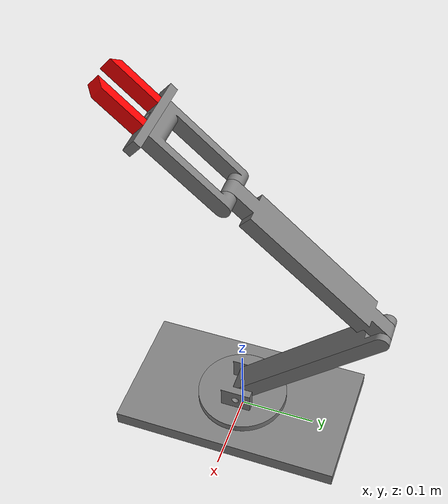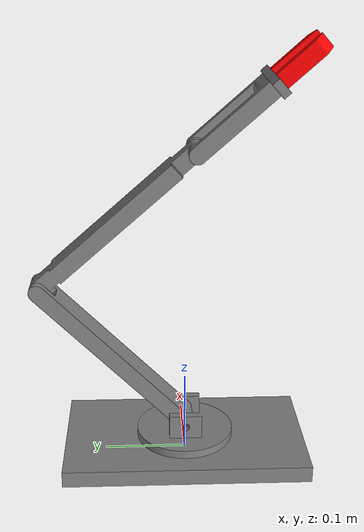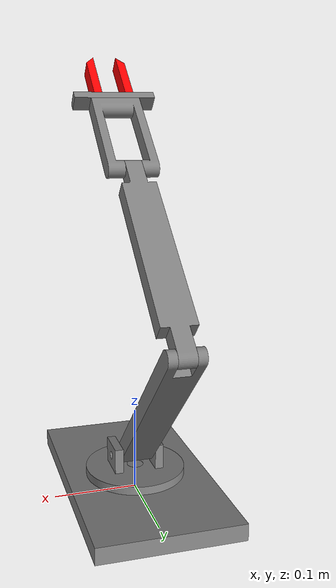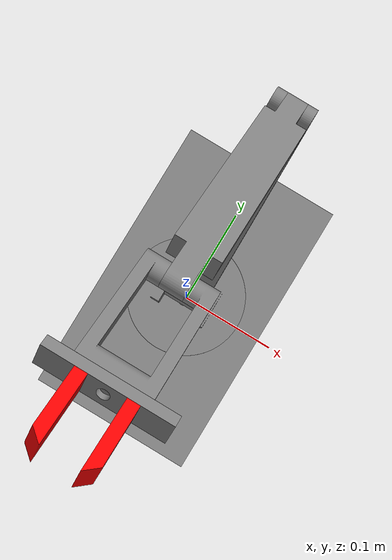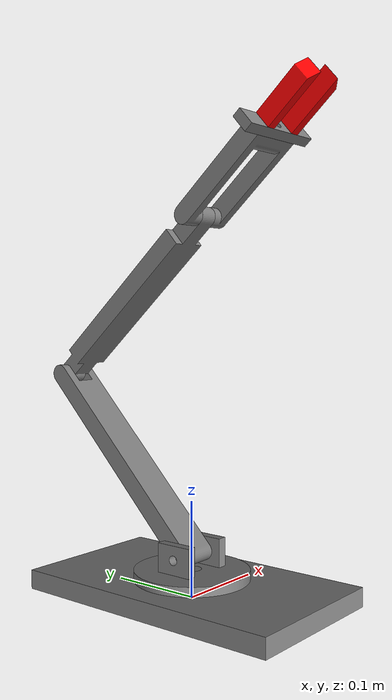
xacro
<?xml version="1.0"?>
<robot xmlns:xacro="http://www.ros.org/wiki/xacro" >

    <material name="grey">
        <color rgba="0.5 0.5 0.5 1.0"/>
    </material>
    <material name="red">
        <color rgba="1.0 0.0 0.0 1.0"/>
    </material>
    <material name="black">
        <color rgba="0.0 0.0 0.0 1.0"/>
    </material>

    <link name="base_link">
        <!-- 慣性プロパティを追加してベースを安定させる -->
        <inertial>
            <origin xyz="0 0 0" rpy="0 0 0"/>
            <mass value="100.0"/>  <!-- 重い質量でベースを安定化 -->
            <inertia ixx="10.0" ixy="0.0" ixz="0.0"
                     iyy="10.0" iyz="0.0"
                     izz="10.0"/>
        </inertial>
        <collision>
            <geometry>
                <box size="0.2 0.2 0.1"/>  <!-- 衝突判定用のボックス -->
            </geometry>
            <origin xyz="0 0 0.05" rpy="0 0 0"/>
        </collision>
    </link>

    <!-- ベースを完全に固定 -->
    <gazebo reference="base_link">
        <static>true</static>
        <material>Gazebo/Gray</material>
    </gazebo>

    <joint name="base" type="fixed">
        <parent link="base_link"/>
        <child link="state_link"/>
        <origin xyz="0 0 0" rpy="${pi/2} 0 0"/>
    </joint>

    <link name = "state_link">
        <visual>
            <geometry>
                <mesh filename="/home/fuga1129/arm_sim_ws/src/aurora_arm/meshes/base_link.stl" scale="0.001 0.001 0.001"/>
            </geometry>
            <origin xyz="0 0 0" rpy="0 0 0"/>
            <material name="grey"/>
        </visual>
        <inertial>
            <origin xyz="-1.2836056698212661e-14 0.010046058033552938 1.777847188118097e-17" rpy="0 0 0"/>
            <mass value="50"/>
            <inertia ixx="0.060326" iyy="0.079337" izz="0.019557" ixy="-0.0" iyz="0.0" ixz="-0.0"/>
        </inertial>
        <collision>
            <origin xyz="0 0 0" rpy="0 0 0"/>
            <geometry>
                <mesh filename="/home/fuga1129/arm_sim_ws/src/aurora_arm/meshes/base_link.stl" scale="0.001 0.001 0.001"/>
            </geometry>
        </collision>
    </link>
    <gazebo reference="state_link">
        <material>Gazebo/Gray</material>
    </gazebo>

    <joint name="rotation1" type="revolute">
        <parent link="state_link"/>
        <child link="arm_link_1"/>
        <origin xyz="0.0 0.03 0.0" rpy="0 0 0"/>
        <axis xyz="0.0 1.0 0.0"/>
        <limit upper="-0.392699" lower="-2.748894" effort="100" velocity="100"/>
        <dynamics damping="10.0" friction="1.0"/>  <!-- ダンピングとフリクション追加 -->
    </joint>

    <link name="arm_link_1">
        <visual>
            <geometry>
                <mesh filename="/home/fuga1129/arm_sim_ws/src/aurora_arm/meshes/arm1_link_1.stl" scale="0.001 0.001 0.001"/>
            </geometry>
            <origin xyz="-0.0 -0.03 -0.0" rpy="0 0 0"/>
            <material name="grey"/>
        </visual>
        <inertial>
            <origin xyz="1.2424219094974304e-14 -0.001611517508914171 2.4814919210499358e-14" rpy="0 0 0"/>
            <mass value="1.039221830408455"/>
            <inertia ixx="0.00099" iyy="0.001733" izz="0.000903" ixy="-0.0" iyz="0.0" ixz="-0.0"/>
        </inertial>
        <collision>
            <origin xyz="-0.0 -0.03 -0.0" rpy="0 0 0"/>
            <geometry>
                <mesh filename="/home/fuga1129/arm_sim_ws/src/aurora_arm/meshes/arm1_link_1.stl" scale="0.001 0.001 0.001"/>
            </geometry>
        </collision>
    </link>
    <gazebo reference="arm_link_1">
        <material>Gazebo/Gray</material>
    </gazebo>

    <joint name="rotation2" type="revolute">
        <parent link="arm_link_1"/>
        <child link="arm_link_2"/>
        <origin xyz="-5e-06 0.015 -0.02" rpy="0 0 0"/>
        <axis xyz="-0.00026 -0.0 -1.0"/>
        <limit upper="1.570796" lower="-0.785398" effort="100" velocity="100"/>
        <dynamics damping="10.0" friction="1.0"/>  <!-- ダンピングとフリクション追加 -->
    </joint>

    <link name="arm_link_2">
        <visual>
            <geometry>
                <mesh filename="/home/fuga1129/arm_sim_ws/src/aurora_arm/meshes/arm2_link_1.stl" scale="0.001 0.001 0.001"/>
            </geometry>
            <origin xyz="5e-06 -0.045 0.02" rpy="0 0 0"/>
            <material name="grey"/>
        </visual>
        <inertial>
            <origin xyz="-0.08436856236861598 0.08574082978509752 0.02002195399237318" rpy="0 0 0"/>
            <mass value="1.556523004661359"/>
            <inertia ixx="0.004388" iyy="0.004258" izz="0.008213" ixy="0.004054" iyz="-1e-06" ixz="1e-06"/>
        </inertial>
        <collision>
            <origin xyz="5e-06 -0.045 0.02" rpy="0 0 0"/>
            <geometry>
                <mesh filename="/home/fuga1129/arm_sim_ws/src/aurora_arm/meshes/arm2_link_1.stl" scale="0.001 0.001 0.001"/>
            </geometry>
        </collision>
    </link>
    <gazebo reference="arm_link_2">
        <material>Gazebo/Gray</material>
    </gazebo>

    <joint name="rotation3" type="revolute">
        <parent link="arm_link_2"/>
        <child link="arm_link_3"/>
        <origin xyz="-0.175343 0.178192 0.030046" rpy="0 0 0"/>
        <axis xyz="-0.00026 0.0 -1.0"/>
        <limit upper="0.785398" lower="-3.141593" effort="100" velocity="100"/>
        <dynamics damping="10.0" friction="1.0"/>  <!-- ダンピングとフリクション追加 -->
    </joint>

    <link name="arm_link_3">
        <visual>
            <geometry>
                <mesh filename="/home/fuga1129/arm_sim_ws/src/aurora_arm/meshes/arm3_link_1.stl" scale="0.001 0.001 0.001"/>
            </geometry>
            <origin xyz="0.175348 -0.223192 -0.010046" rpy="0 0 0"/>
            <material name="grey"/>
        </visual>
        <inertial>
            <origin xyz="0.09386781150408618 0.08296159224208283 -0.010024798863264761" rpy="0 0 0"/>
            <mass value="1.4275537558266949"/>
            <inertia ixx="0.003111" iyy="0.003931" izz="0.006708" ixy="-0.003281" iyz="1e-06" ixz="1e-06"/>
        </inertial>
        <collision>
            <origin xyz="0.175348 -0.223192 -0.010046" rpy="0 0 0"/>
            <geometry>
                <mesh filename="/home/fuga1129/arm_sim_ws/src/aurora_arm/meshes/arm3_link_1.stl" scale="0.001 0.001 0.001"/>
            </geometry>
        </collision>
    </link>
    <gazebo reference="arm_link_3">
        <material>Gazebo/Gray</material>
    </gazebo>

    <joint name="rotation4" type="revolute">
        <parent link="arm_link_3"/>
        <child link="arm_link_4"/>
        <origin xyz="0.187345 0.16553 -0.020049" rpy="0 0 0"/>
        <axis xyz="-0.00026 0.0 -1.0"/>
        <limit upper="1.570796" lower="-0.872665" effort="100" velocity="100"/>
        <dynamics damping="10.0" friction="1.0"/>  <!-- ダンピングとフリクション追加 -->
    </joint>

    <link name="arm_link_4">
        <visual>
            <geometry>
                <mesh filename="/home/fuga1129/arm_sim_ws/src/aurora_arm/meshes/arm4_link_1.stl" scale="0.001 0.001 0.001"/>
            </geometry>
            <origin xyz="-0.011997 -0.388722 0.010003" rpy="0 0 0"/>
            <material name="grey"/>
        </visual>
        <inertial>
            <origin xyz="0.04283652196076893 0.03784496310007385 0.00998873232310213" rpy="0 0 0"/>
            <mass value="0.5345901994447376"/>
            <inertia ixx="0.000635" iyy="0.000736" izz="0.00085" ixy="-0.000405" iyz="0.0" ixz="0.0"/>
        </inertial>
        <collision>
            <origin xyz="-0.011997 -0.388722 0.010003" rpy="0 0 0"/>
            <geometry>
                <mesh filename="/home/fuga1129/arm_sim_ws/src/aurora_arm/meshes/arm4_link_1.stl" scale="0.001 0.001 0.001"/>
            </geometry>
        </collision>
    </link>
    <gazebo reference="arm_link_4">
            <material>Gazebo/Gray</material>
    </gazebo>

    <joint name="rotation5" type="revolute">
        <parent link="arm_link_4"/>
        <child link="arm_link_5"/>
        <origin xyz="0.01417 0.114124 0.009996" rpy="0 0 0"/>
        <axis xyz="0.749398 0.662119 -0.000195"/>
        <limit upper="2.356194" lower="-2.356194" effort="100" velocity="100"/>
    </joint>

    <link name="arm_link_5">
        <visual>
            <geometry>
                <mesh filename="/home/fuga1129/arm_sim_ws/src/aurora_arm/meshes/arm5_link_1.stl" scale="0.001 0.001 0.001"/>
            </geometry>
            <origin xyz="-0.026167 -0.502846 7e-06" rpy="0 0 0"/>
            <material name="grey"/>
        </visual>
        <inertial>
            <origin xyz="0.07201323471428178 -0.0379807321383373 -1.8546487173911982e-05" rpy="0 0 0"/>
            <mass value="0.15083462441733284"/>
            <inertia ixx="0.000134" iyy="0.000134" izz="6e-06" ixy="2e-06" iyz="0.0" ixz="-0.0"/>
        </inertial>
        <collision>
            <origin xyz="-0.026167 -0.502846 7e-06" rpy="0 0 0"/>
            <geometry>
                <mesh filename="/home/fuga1129/arm_sim_ws/src/aurora_arm/meshes/arm5_link_1.stl" scale="0.001 0.001 0.001"/>
            </geometry>
        </collision>
    </link>
    <gazebo reference="arm_link_5">
        <material>Gazebo/Gray</material>
    </gazebo>

    <joint name="slide1" type="prismatic">
        <parent link="arm_link_5"/>
        <child link="hand_link_1"/>
        <origin xyz="0.072052 -0.03801 0.049981" rpy="0 0 0"/>
        <axis xyz="-0.00052 0.000294 -1.0"/>
        <limit upper="0.04" lower="0.001" effort="100" velocity="100"/>
        <dynamics damping="5.0" friction="0.5"/>  <!-- ダンピングとフリクション追加 -->
    </joint>

    <link name="hand_link_1">
        <visual>
            <geometry>
                <mesh filename="/home/fuga1129/arm_sim_ws/src/aurora_arm/meshes/hand1_link_1.stl" scale="0.001 0.001 0.001"/>
            </geometry>
            <origin xyz="-0.098219 -0.464836 -0.049974" rpy="0 0 0"/>
            <material name="red"/>
        </visual>
        <inertial>
            <origin xyz="0.02626289486026448 0.023237763910856968 -0.010145280708131962" rpy="0 0 0"/>
            <mass value="0.0941999999999979"/>
            <inertia ixx="1.5e-05" iyy="1.8e-05" izz="3.2e-05" ixy="-1.3e-05" iyz="0.0" ixz="0.0"/>
        </inertial>
        <collision>
            <origin xyz="-0.098219 -0.464836 -0.049974" rpy="0 0 0"/>
            <geometry>
                <mesh filename="/home/fuga1129/arm_sim_ws/src/aurora_arm/meshes/hand1_link_1.stl" scale="0.001 0.001 0.001"/>
            </geometry>
        </collision>
    </link>
    <gazebo reference="hand_link_1">
        <material>Gazebo/Red</material>
    </gazebo>

    <joint name="slide2" type="prismatic">
        <parent link="arm_link_5"/>
        <child link="hand_link_2"/>
        <origin xyz="0.071974 -0.037951 -0.050019" rpy="0 0 0"/>
        <axis xyz="0.00052 -0.000294 1.0"/>
        <limit upper="0.04" lower="0.001" effort="100" velocity="100"/>
        <dynamics damping="5.0" friction="0.5"/>  <!-- ダンピングとフリクション追加 -->
    </joint>

    <link name="hand_link_2">
        <visual>
            <geometry>
                <mesh filename="/home/fuga1129/arm_sim_ws/src/aurora_arm/meshes/hand2_link_1.stl" scale="0.001 0.001 0.001"/>
            </geometry>
            <origin xyz="-0.098141 -0.464895 0.050026" rpy="0 0 0"/>
            <material name="red"/>
        </visual>
        <inertial>
            <origin xyz="0.02629947971429203 0.023202160214768452 0.010132511217204668" rpy="0 0 0"/>
            <mass value="0.09419999999999831"/>
            <inertia ixx="1.5e-05" iyy="1.8e-05" izz="3.2e-05" ixy="-1.3e-05" iyz="-0.0" ixz="-0.0"/>
        </inertial>
        <collision>
            <origin xyz="-0.098141 -0.464895 0.050026" rpy="0 0 0"/>
            <geometry>
                <mesh filename="/home/fuga1129/arm_sim_ws/src/aurora_arm/meshes/hand2_link_1.stl" scale="0.001 0.001 0.001"/>
            </geometry>
        </collision>
    </link>
    <gazebo reference="hand_link_2">
        <material>Gazebo/Red</material>
    </gazebo>

</robot>
